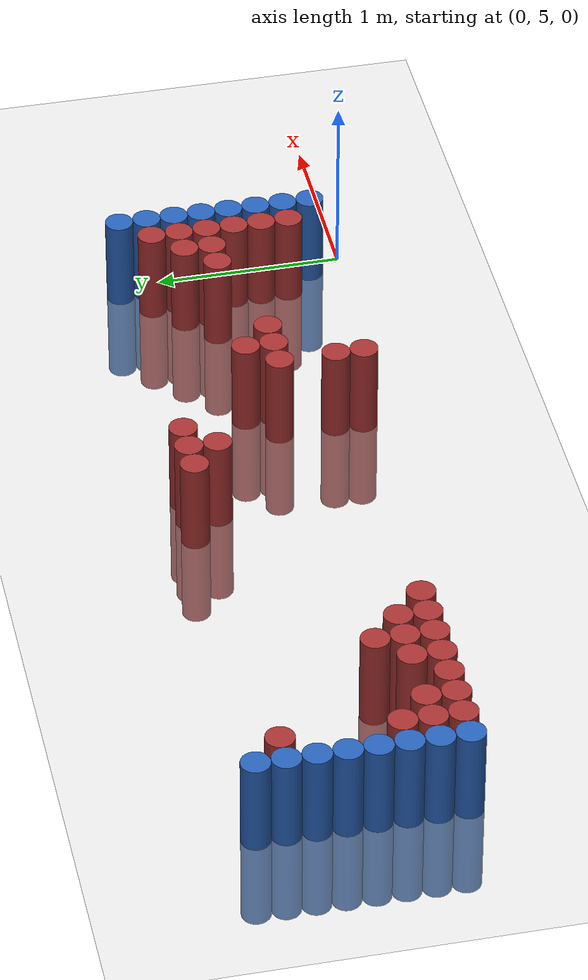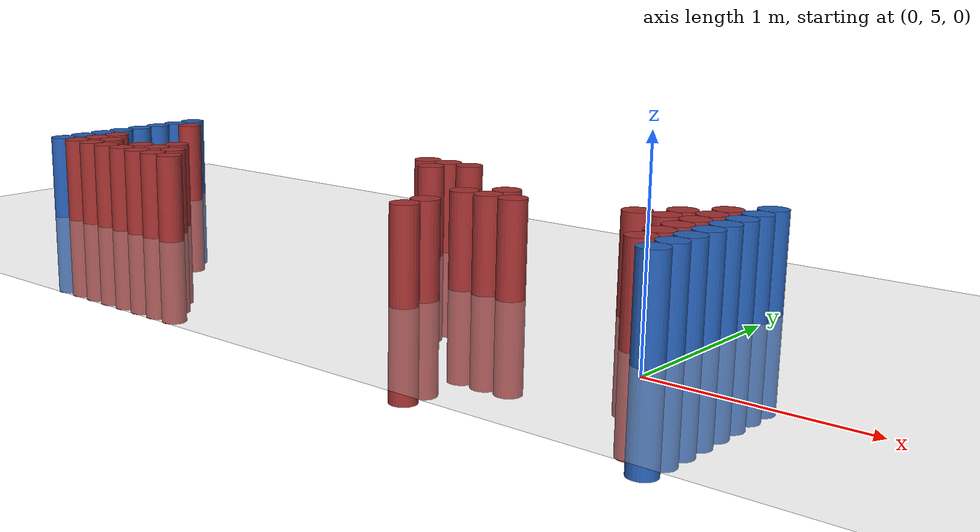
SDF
<sdf version="1.6">
 <world name="default">
  <model name="ground_plane">
   <static>1</static>
   <link name="link">
    <collision name="collision">
     <geometry><plane><normal>0 0 1</normal><size>100 100</size></plane></geometry>
     <surface><friction><ode><mu>100</mu><mu2>50</mu2></ode></friction></surface>
    </collision>
    <visual name="visual">
     <cast_shadows>0</cast_shadows>
     <geometry><plane><normal>0 0 1</normal><size>100 100</size></plane></geometry>
     <material>
      <script><uri>file://media/materials/scripts/gazebo.material</uri><name>Gazebo/Grey</name></script>
     </material>
    </visual>
   </link>
  </model>
  <model name="unit_cylinder_97">
   <static>1</static>
   <pose>-4.425000 5.325000 0.000000 0.000000 0.000000 0.000000</pose>
   <link name="link">
    <inertial>
     <mass>1</mass>
     <inertia><ixx>0.145833</ixx><ixy>0</ixy><ixz>0</ixz><iyy>0.145833</iyy><iyz>0</iyz><izz>0.125</izz></inertia>
    </inertial>
    <collision name="collision">
     <geometry><cylinder><radius>0.075000</radius><length>1</length></cylinder></geometry>
    </collision>
    <visual name="visual">
     <geometry><cylinder><radius>0.075000</radius><length>1</length></cylinder></geometry>
     <material>
      <ambient>0.152000 0.379000 0.720000 1</ambient>
      <diffuse>0.152000 0.379000 0.720000 1</diffuse>
     </material>
     <material>
      <script><name>Gazebo/Grey</name><uri>file://media/materials/scripts/gazebo.material</uri></script>
     </material>
    </visual>
   </link>
  </model>
  <model name="unit_cylinder_98">
   <static>1</static>
   <pose>-4.425000 5.475000 0.000000 0.000000 0.000000 0.000000</pose>
   <link name="link">
    <inertial>
     <mass>1</mass>
     <inertia><ixx>0.145833</ixx><ixy>0</ixy><ixz>0</ixz><iyy>0.145833</iyy><iyz>0</iyz><izz>0.125</izz></inertia>
    </inertial>
    <collision name="collision">
     <geometry><cylinder><radius>0.075000</radius><length>1</length></cylinder></geometry>
    </collision>
    <visual name="visual">
     <geometry><cylinder><radius>0.075000</radius><length>1</length></cylinder></geometry>
     <material>
      <ambient>0.152000 0.379000 0.720000 1</ambient>
      <diffuse>0.152000 0.379000 0.720000 1</diffuse>
     </material>
     <material>
      <script><name>Gazebo/Grey</name><uri>file://media/materials/scripts/gazebo.material</uri></script>
     </material>
    </visual>
   </link>
  </model>
  <model name="unit_cylinder_99">
   <static>1</static>
   <pose>-4.425000 5.625000 0.000000 0.000000 0.000000 0.000000</pose>
   <link name="link">
    <inertial>
     <mass>1</mass>
     <inertia><ixx>0.145833</ixx><ixy>0</ixy><ixz>0</ixz><iyy>0.145833</iyy><iyz>0</iyz><izz>0.125</izz></inertia>
    </inertial>
    <collision name="collision">
     <geometry><cylinder><radius>0.075000</radius><length>1</length></cylinder></geometry>
    </collision>
    <visual name="visual">
     <geometry><cylinder><radius>0.075000</radius><length>1</length></cylinder></geometry>
     <material>
      <ambient>0.152000 0.379000 0.720000 1</ambient>
      <diffuse>0.152000 0.379000 0.720000 1</diffuse>
     </material>
     <material>
      <script><name>Gazebo/Grey</name><uri>file://media/materials/scripts/gazebo.material</uri></script>
     </material>
    </visual>
   </link>
  </model>
  <model name="unit_cylinder_100">
   <static>1</static>
   <pose>-4.425000 5.775000 0.000000 0.000000 0.000000 0.000000</pose>
   <link name="link">
    <inertial>
     <mass>1</mass>
     <inertia><ixx>0.145833</ixx><ixy>0</ixy><ixz>0</ixz><iyy>0.145833</iyy><iyz>0</iyz><izz>0.125</izz></inertia>
    </inertial>
    <collision name="collision">
     <geometry><cylinder><radius>0.075000</radius><length>1</length></cylinder></geometry>
    </collision>
    <visual name="visual">
     <geometry><cylinder><radius>0.075000</radius><length>1</length></cylinder></geometry>
     <material>
      <ambient>0.152000 0.379000 0.720000 1</ambient>
      <diffuse>0.152000 0.379000 0.720000 1</diffuse>
     </material>
     <material>
      <script><name>Gazebo/Grey</name><uri>file://media/materials/scripts/gazebo.material</uri></script>
     </material>
    </visual>
   </link>
  </model>
  <model name="unit_cylinder_101">
   <static>1</static>
   <pose>-4.425000 5.925000 0.000000 0.000000 0.000000 0.000000</pose>
   <link name="link">
    <inertial>
     <mass>1</mass>
     <inertia><ixx>0.145833</ixx><ixy>0</ixy><ixz>0</ixz><iyy>0.145833</iyy><iyz>0</iyz><izz>0.125</izz></inertia>
    </inertial>
    <collision name="collision">
     <geometry><cylinder><radius>0.075000</radius><length>1</length></cylinder></geometry>
    </collision>
    <visual name="visual">
     <geometry><cylinder><radius>0.075000</radius><length>1</length></cylinder></geometry>
     <material>
      <ambient>0.152000 0.379000 0.720000 1</ambient>
      <diffuse>0.152000 0.379000 0.720000 1</diffuse>
     </material>
     <material>
      <script><name>Gazebo/Grey</name><uri>file://media/materials/scripts/gazebo.material</uri></script>
     </material>
    </visual>
   </link>
  </model>
  <model name="unit_cylinder_102">
   <static>1</static>
   <pose>-4.425000 6.075000 0.000000 0.000000 0.000000 0.000000</pose>
   <link name="link">
    <inertial>
     <mass>1</mass>
     <inertia><ixx>0.145833</ixx><ixy>0</ixy><ixz>0</ixz><iyy>0.145833</iyy><iyz>0</iyz><izz>0.125</izz></inertia>
    </inertial>
    <collision name="collision">
     <geometry><cylinder><radius>0.075000</radius><length>1</length></cylinder></geometry>
    </collision>
    <visual name="visual">
     <geometry><cylinder><radius>0.075000</radius><length>1</length></cylinder></geometry>
     <material>
      <ambient>0.152000 0.379000 0.720000 1</ambient>
      <diffuse>0.152000 0.379000 0.720000 1</diffuse>
     </material>
     <material>
      <script><name>Gazebo/Grey</name><uri>file://media/materials/scripts/gazebo.material</uri></script>
     </material>
    </visual>
   </link>
  </model>
  <model name="unit_cylinder_103">
   <static>1</static>
   <pose>-4.425000 6.225000 0.000000 0.000000 0.000000 0.000000</pose>
   <link name="link">
    <inertial>
     <mass>1</mass>
     <inertia><ixx>0.145833</ixx><ixy>0</ixy><ixz>0</ixz><iyy>0.145833</iyy><iyz>0</iyz><izz>0.125</izz></inertia>
    </inertial>
    <collision name="collision">
     <geometry><cylinder><radius>0.075000</radius><length>1</length></cylinder></geometry>
    </collision>
    <visual name="visual">
     <geometry><cylinder><radius>0.075000</radius><length>1</length></cylinder></geometry>
     <material>
      <ambient>0.152000 0.379000 0.720000 1</ambient>
      <diffuse>0.152000 0.379000 0.720000 1</diffuse>
     </material>
     <material>
      <script><name>Gazebo/Grey</name><uri>file://media/materials/scripts/gazebo.material</uri></script>
     </material>
    </visual>
   </link>
  </model>
  <model name="unit_cylinder_104">
   <static>1</static>
   <pose>-4.425000 6.375000 0.000000 0.000000 0.000000 0.000000</pose>
   <link name="link">
    <inertial>
     <mass>1</mass>
     <inertia><ixx>0.145833</ixx><ixy>0</ixy><ixz>0</ixz><iyy>0.145833</iyy><iyz>0</iyz><izz>0.125</izz></inertia>
    </inertial>
    <collision name="collision">
     <geometry><cylinder><radius>0.075000</radius><length>1</length></cylinder></geometry>
    </collision>
    <visual name="visual">
     <geometry><cylinder><radius>0.075000</radius><length>1</length></cylinder></geometry>
     <material>
      <ambient>0.152000 0.379000 0.720000 1</ambient>
      <diffuse>0.152000 0.379000 0.720000 1</diffuse>
     </material>
     <material>
      <script><name>Gazebo/Grey</name><uri>file://media/materials/scripts/gazebo.material</uri></script>
     </material>
    </visual>
   </link>
  </model>
  <model name="unit_cylinder_126">
   <static>1</static>
   <pose>-4.275000 5.325000 0.000000 0.000000 0.000000 0.000000</pose>
   <link name="link">
    <inertial>
     <mass>1</mass>
     <inertia><ixx>0.145833</ixx><ixy>0</ixy><ixz>0</ixz><iyy>0.145833</iyy><iyz>0</iyz><izz>0.125</izz></inertia>
    </inertial>
    <collision name="collision">
     <geometry><cylinder><radius>0.075000</radius><length>1</length></cylinder></geometry>
    </collision>
    <visual name="visual">
     <geometry><cylinder><radius>0.075000</radius><length>1</length></cylinder></geometry>
     <material>
      <ambient>0.648000 0.192000 0.192000 1</ambient>
      <diffuse>0.648000 0.192000 0.192000 1</diffuse>
     </material>
     <material>
      <script><name>Gazebo/Grey</name><uri>file://media/materials/scripts/gazebo.material</uri></script>
     </material>
    </visual>
   </link>
  </model>
  <model name="unit_cylinder_127">
   <static>1</static>
   <pose>-4.275000 5.475000 0.000000 0.000000 0.000000 0.000000</pose>
   <link name="link">
    <inertial>
     <mass>1</mass>
     <inertia><ixx>0.145833</ixx><ixy>0</ixy><ixz>0</ixz><iyy>0.145833</iyy><iyz>0</iyz><izz>0.125</izz></inertia>
    </inertial>
    <collision name="collision">
     <geometry><cylinder><radius>0.075000</radius><length>1</length></cylinder></geometry>
    </collision>
    <visual name="visual">
     <geometry><cylinder><radius>0.075000</radius><length>1</length></cylinder></geometry>
     <material>
      <ambient>0.648000 0.192000 0.192000 1</ambient>
      <diffuse>0.648000 0.192000 0.192000 1</diffuse>
     </material>
     <material>
      <script><name>Gazebo/Grey</name><uri>file://media/materials/scripts/gazebo.material</uri></script>
     </material>
    </visual>
   </link>
  </model>
  <model name="unit_cylinder_128">
   <static>1</static>
   <pose>-4.275000 5.625000 0.000000 0.000000 0.000000 0.000000</pose>
   <link name="link">
    <inertial>
     <mass>1</mass>
     <inertia><ixx>0.145833</ixx><ixy>0</ixy><ixz>0</ixz><iyy>0.145833</iyy><iyz>0</iyz><izz>0.125</izz></inertia>
    </inertial>
    <collision name="collision">
     <geometry><cylinder><radius>0.075000</radius><length>1</length></cylinder></geometry>
    </collision>
    <visual name="visual">
     <geometry><cylinder><radius>0.075000</radius><length>1</length></cylinder></geometry>
     <material>
      <ambient>0.648000 0.192000 0.192000 1</ambient>
      <diffuse>0.648000 0.192000 0.192000 1</diffuse>
     </material>
     <material>
      <script><name>Gazebo/Grey</name><uri>file://media/materials/scripts/gazebo.material</uri></script>
     </material>
    </visual>
   </link>
  </model>
  <model name="unit_cylinder_129">
   <static>1</static>
   <pose>-4.275000 6.225000 0.000000 0.000000 0.000000 0.000000</pose>
   <link name="link">
    <inertial>
     <mass>1</mass>
     <inertia><ixx>0.145833</ixx><ixy>0</ixy><ixz>0</ixz><iyy>0.145833</iyy><iyz>0</iyz><izz>0.125</izz></inertia>
    </inertial>
    <collision name="collision">
     <geometry><cylinder><radius>0.075000</radius><length>1</length></cylinder></geometry>
    </collision>
    <visual name="visual">
     <geometry><cylinder><radius>0.075000</radius><length>1</length></cylinder></geometry>
     <material>
      <ambient>0.648000 0.192000 0.192000 1</ambient>
      <diffuse>0.648000 0.192000 0.192000 1</diffuse>
     </material>
     <material>
      <script><name>Gazebo/Grey</name><uri>file://media/materials/scripts/gazebo.material</uri></script>
     </material>
    </visual>
   </link>
  </model>
  <model name="unit_cylinder_139">
   <static>1</static>
   <pose>-4.125000 5.325000 0.000000 0.000000 0.000000 0.000000</pose>
   <link name="link">
    <inertial>
     <mass>1</mass>
     <inertia><ixx>0.145833</ixx><ixy>0</ixy><ixz>0</ixz><iyy>0.145833</iyy><iyz>0</iyz><izz>0.125</izz></inertia>
    </inertial>
    <collision name="collision">
     <geometry><cylinder><radius>0.075000</radius><length>1</length></cylinder></geometry>
    </collision>
    <visual name="visual">
     <geometry><cylinder><radius>0.075000</radius><length>1</length></cylinder></geometry>
     <material>
      <ambient>0.648000 0.192000 0.192000 1</ambient>
      <diffuse>0.648000 0.192000 0.192000 1</diffuse>
     </material>
     <material>
      <script><name>Gazebo/Grey</name><uri>file://media/materials/scripts/gazebo.material</uri></script>
     </material>
    </visual>
   </link>
  </model>
  <model name="unit_cylinder_140">
   <static>1</static>
   <pose>-4.125000 5.475000 0.000000 0.000000 0.000000 0.000000</pose>
   <link name="link">
    <inertial>
     <mass>1</mass>
     <inertia><ixx>0.145833</ixx><ixy>0</ixy><ixz>0</ixz><iyy>0.145833</iyy><iyz>0</iyz><izz>0.125</izz></inertia>
    </inertial>
    <collision name="collision">
     <geometry><cylinder><radius>0.075000</radius><length>1</length></cylinder></geometry>
    </collision>
    <visual name="visual">
     <geometry><cylinder><radius>0.075000</radius><length>1</length></cylinder></geometry>
     <material>
      <ambient>0.648000 0.192000 0.192000 1</ambient>
      <diffuse>0.648000 0.192000 0.192000 1</diffuse>
     </material>
     <material>
      <script><name>Gazebo/Grey</name><uri>file://media/materials/scripts/gazebo.material</uri></script>
     </material>
    </visual>
   </link>
  </model>
  <model name="unit_cylinder_146">
   <static>1</static>
   <pose>-3.975000 5.325000 0.000000 0.000000 0.000000 0.000000</pose>
   <link name="link">
    <inertial>
     <mass>1</mass>
     <inertia><ixx>0.145833</ixx><ixy>0</ixy><ixz>0</ixz><iyy>0.145833</iyy><iyz>0</iyz><izz>0.125</izz></inertia>
    </inertial>
    <collision name="collision">
     <geometry><cylinder><radius>0.075000</radius><length>1</length></cylinder></geometry>
    </collision>
    <visual name="visual">
     <geometry><cylinder><radius>0.075000</radius><length>1</length></cylinder></geometry>
     <material>
      <ambient>0.648000 0.192000 0.192000 1</ambient>
      <diffuse>0.648000 0.192000 0.192000 1</diffuse>
     </material>
     <material>
      <script><name>Gazebo/Grey</name><uri>file://media/materials/scripts/gazebo.material</uri></script>
     </material>
    </visual>
   </link>
  </model>
  <model name="unit_cylinder_155">
   <static>1</static>
   <pose>-3.825000 5.325000 0.000000 0.000000 0.000000 0.000000</pose>
   <link name="link">
    <inertial>
     <mass>1</mass>
     <inertia><ixx>0.145833</ixx><ixy>0</ixy><ixz>0</ixz><iyy>0.145833</iyy><iyz>0</iyz><izz>0.125</izz></inertia>
    </inertial>
    <collision name="collision">
     <geometry><cylinder><radius>0.075000</radius><length>1</length></cylinder></geometry>
    </collision>
    <visual name="visual">
     <geometry><cylinder><radius>0.075000</radius><length>1</length></cylinder></geometry>
     <material>
      <ambient>0.648000 0.192000 0.192000 1</ambient>
      <diffuse>0.648000 0.192000 0.192000 1</diffuse>
     </material>
     <material>
      <script><name>Gazebo/Grey</name><uri>file://media/materials/scripts/gazebo.material</uri></script>
     </material>
    </visual>
   </link>
  </model>
  <model name="unit_cylinder_156">
   <static>1</static>
   <pose>-3.825000 5.475000 0.000000 0.000000 0.000000 0.000000</pose>
   <link name="link">
    <inertial>
     <mass>1</mass>
     <inertia><ixx>0.145833</ixx><ixy>0</ixy><ixz>0</ixz><iyy>0.145833</iyy><iyz>0</iyz><izz>0.125</izz></inertia>
    </inertial>
    <collision name="collision">
     <geometry><cylinder><radius>0.075000</radius><length>1</length></cylinder></geometry>
    </collision>
    <visual name="visual">
     <geometry><cylinder><radius>0.075000</radius><length>1</length></cylinder></geometry>
     <material>
      <ambient>0.648000 0.192000 0.192000 1</ambient>
      <diffuse>0.648000 0.192000 0.192000 1</diffuse>
     </material>
     <material>
      <script><name>Gazebo/Grey</name><uri>file://media/materials/scripts/gazebo.material</uri></script>
     </material>
    </visual>
   </link>
  </model>
  <model name="unit_cylinder_168">
   <static>1</static>
   <pose>-3.675000 5.325000 0.000000 0.000000 0.000000 0.000000</pose>
   <link name="link">
    <inertial>
     <mass>1</mass>
     <inertia><ixx>0.145833</ixx><ixy>0</ixy><ixz>0</ixz><iyy>0.145833</iyy><iyz>0</iyz><izz>0.125</izz></inertia>
    </inertial>
    <collision name="collision">
     <geometry><cylinder><radius>0.075000</radius><length>1</length></cylinder></geometry>
    </collision>
    <visual name="visual">
     <geometry><cylinder><radius>0.075000</radius><length>1</length></cylinder></geometry>
     <material>
      <ambient>0.648000 0.192000 0.192000 1</ambient>
      <diffuse>0.648000 0.192000 0.192000 1</diffuse>
     </material>
     <material>
      <script><name>Gazebo/Grey</name><uri>file://media/materials/scripts/gazebo.material</uri></script>
     </material>
    </visual>
   </link>
  </model>
  <model name="unit_cylinder_169">
   <static>1</static>
   <pose>-3.675000 5.475000 0.000000 0.000000 0.000000 0.000000</pose>
   <link name="link">
    <inertial>
     <mass>1</mass>
     <inertia><ixx>0.145833</ixx><ixy>0</ixy><ixz>0</ixz><iyy>0.145833</iyy><iyz>0</iyz><izz>0.125</izz></inertia>
    </inertial>
    <collision name="collision">
     <geometry><cylinder><radius>0.075000</radius><length>1</length></cylinder></geometry>
    </collision>
    <visual name="visual">
     <geometry><cylinder><radius>0.075000</radius><length>1</length></cylinder></geometry>
     <material>
      <ambient>0.648000 0.192000 0.192000 1</ambient>
      <diffuse>0.648000 0.192000 0.192000 1</diffuse>
     </material>
     <material>
      <script><name>Gazebo/Grey</name><uri>file://media/materials/scripts/gazebo.material</uri></script>
     </material>
    </visual>
   </link>
  </model>
  <model name="unit_cylinder_170">
   <static>1</static>
   <pose>-3.675000 5.625000 0.000000 0.000000 0.000000 0.000000</pose>
   <link name="link">
    <inertial>
     <mass>1</mass>
     <inertia><ixx>0.145833</ixx><ixy>0</ixy><ixz>0</ixz><iyy>0.145833</iyy><iyz>0</iyz><izz>0.125</izz></inertia>
    </inertial>
    <collision name="collision">
     <geometry><cylinder><radius>0.075000</radius><length>1</length></cylinder></geometry>
    </collision>
    <visual name="visual">
     <geometry><cylinder><radius>0.075000</radius><length>1</length></cylinder></geometry>
     <material>
      <ambient>0.648000 0.192000 0.192000 1</ambient>
      <diffuse>0.648000 0.192000 0.192000 1</diffuse>
     </material>
     <material>
      <script><name>Gazebo/Grey</name><uri>file://media/materials/scripts/gazebo.material</uri></script>
     </material>
    </visual>
   </link>
  </model>
  <model name="unit_cylinder_175">
   <static>1</static>
   <pose>-3.525000 5.325000 0.000000 0.000000 0.000000 0.000000</pose>
   <link name="link">
    <inertial>
     <mass>1</mass>
     <inertia><ixx>0.145833</ixx><ixy>0</ixy><ixz>0</ixz><iyy>0.145833</iyy><iyz>0</iyz><izz>0.125</izz></inertia>
    </inertial>
    <collision name="collision">
     <geometry><cylinder><radius>0.075000</radius><length>1</length></cylinder></geometry>
    </collision>
    <visual name="visual">
     <geometry><cylinder><radius>0.075000</radius><length>1</length></cylinder></geometry>
     <material>
      <ambient>0.648000 0.192000 0.192000 1</ambient>
      <diffuse>0.648000 0.192000 0.192000 1</diffuse>
     </material>
     <material>
      <script><name>Gazebo/Grey</name><uri>file://media/materials/scripts/gazebo.material</uri></script>
     </material>
    </visual>
   </link>
  </model>
  <model name="unit_cylinder_176">
   <static>1</static>
   <pose>-3.525000 5.475000 0.000000 0.000000 0.000000 0.000000</pose>
   <link name="link">
    <inertial>
     <mass>1</mass>
     <inertia><ixx>0.145833</ixx><ixy>0</ixy><ixz>0</ixz><iyy>0.145833</iyy><iyz>0</iyz><izz>0.125</izz></inertia>
    </inertial>
    <collision name="collision">
     <geometry><cylinder><radius>0.075000</radius><length>1</length></cylinder></geometry>
    </collision>
    <visual name="visual">
     <geometry><cylinder><radius>0.075000</radius><length>1</length></cylinder></geometry>
     <material>
      <ambient>0.648000 0.192000 0.192000 1</ambient>
      <diffuse>0.648000 0.192000 0.192000 1</diffuse>
     </material>
     <material>
      <script><name>Gazebo/Grey</name><uri>file://media/materials/scripts/gazebo.material</uri></script>
     </material>
    </visual>
   </link>
  </model>
  <model name="unit_cylinder_179">
   <static>1</static>
   <pose>-3.375000 5.325000 0.000000 0.000000 0.000000 0.000000</pose>
   <link name="link">
    <inertial>
     <mass>1</mass>
     <inertia><ixx>0.145833</ixx><ixy>0</ixy><ixz>0</ixz><iyy>0.145833</iyy><iyz>0</iyz><izz>0.125</izz></inertia>
    </inertial>
    <collision name="collision">
     <geometry><cylinder><radius>0.075000</radius><length>1</length></cylinder></geometry>
    </collision>
    <visual name="visual">
     <geometry><cylinder><radius>0.075000</radius><length>1</length></cylinder></geometry>
     <material>
      <ambient>0.648000 0.192000 0.192000 1</ambient>
      <diffuse>0.648000 0.192000 0.192000 1</diffuse>
     </material>
     <material>
      <script><name>Gazebo/Grey</name><uri>file://media/materials/scripts/gazebo.material</uri></script>
     </material>
    </visual>
   </link>
  </model>
  <model name="unit_cylinder_195">
   <static>1</static>
   <pose>-2.175000 6.225000 0.000000 0.000000 0.000000 0.000000</pose>
   <link name="link">
    <inertial>
     <mass>1</mass>
     <inertia><ixx>0.145833</ixx><ixy>0</ixy><ixz>0</ixz><iyy>0.145833</iyy><iyz>0</iyz><izz>0.125</izz></inertia>
    </inertial>
    <collision name="collision">
     <geometry><cylinder><radius>0.075000</radius><length>1</length></cylinder></geometry>
    </collision>
    <visual name="visual">
     <geometry><cylinder><radius>0.075000</radius><length>1</length></cylinder></geometry>
     <material>
      <ambient>0.648000 0.192000 0.192000 1</ambient>
      <diffuse>0.648000 0.192000 0.192000 1</diffuse>
     </material>
     <material>
      <script><name>Gazebo/Grey</name><uri>file://media/materials/scripts/gazebo.material</uri></script>
     </material>
    </visual>
   </link>
  </model>
  <model name="unit_cylinder_200">
   <static>1</static>
   <pose>-2.025000 6.075000 0.000000 0.000000 0.000000 0.000000</pose>
   <link name="link">
    <inertial>
     <mass>1</mass>
     <inertia><ixx>0.145833</ixx><ixy>0</ixy><ixz>0</ixz><iyy>0.145833</iyy><iyz>0</iyz><izz>0.125</izz></inertia>
    </inertial>
    <collision name="collision">
     <geometry><cylinder><radius>0.075000</radius><length>1</length></cylinder></geometry>
    </collision>
    <visual name="visual">
     <geometry><cylinder><radius>0.075000</radius><length>1</length></cylinder></geometry>
     <material>
      <ambient>0.648000 0.192000 0.192000 1</ambient>
      <diffuse>0.648000 0.192000 0.192000 1</diffuse>
     </material>
     <material>
      <script><name>Gazebo/Grey</name><uri>file://media/materials/scripts/gazebo.material</uri></script>
     </material>
    </visual>
   </link>
  </model>
  <model name="unit_cylinder_201">
   <static>1</static>
   <pose>-2.025000 6.225000 0.000000 0.000000 0.000000 0.000000</pose>
   <link name="link">
    <inertial>
     <mass>1</mass>
     <inertia><ixx>0.145833</ixx><ixy>0</ixy><ixz>0</ixz><iyy>0.145833</iyy><iyz>0</iyz><izz>0.125</izz></inertia>
    </inertial>
    <collision name="collision">
     <geometry><cylinder><radius>0.075000</radius><length>1</length></cylinder></geometry>
    </collision>
    <visual name="visual">
     <geometry><cylinder><radius>0.075000</radius><length>1</length></cylinder></geometry>
     <material>
      <ambient>0.648000 0.192000 0.192000 1</ambient>
      <diffuse>0.648000 0.192000 0.192000 1</diffuse>
     </material>
     <material>
      <script><name>Gazebo/Grey</name><uri>file://media/materials/scripts/gazebo.material</uri></script>
     </material>
    </visual>
   </link>
  </model>
  <model name="unit_cylinder_209">
   <static>1</static>
   <pose>-1.875000 6.225000 0.000000 0.000000 0.000000 0.000000</pose>
   <link name="link">
    <inertial>
     <mass>1</mass>
     <inertia><ixx>0.145833</ixx><ixy>0</ixy><ixz>0</ixz><iyy>0.145833</iyy><iyz>0</iyz><izz>0.125</izz></inertia>
    </inertial>
    <collision name="collision">
     <geometry><cylinder><radius>0.075000</radius><length>1</length></cylinder></geometry>
    </collision>
    <visual name="visual">
     <geometry><cylinder><radius>0.075000</radius><length>1</length></cylinder></geometry>
     <material>
      <ambient>0.648000 0.192000 0.192000 1</ambient>
      <diffuse>0.648000 0.192000 0.192000 1</diffuse>
     </material>
     <material>
      <script><name>Gazebo/Grey</name><uri>file://media/materials/scripts/gazebo.material</uri></script>
     </material>
    </visual>
   </link>
  </model>
  <model name="unit_cylinder_223">
   <static>1</static>
   <pose>-1.425000 5.175000 0.000000 0.000000 0.000000 0.000000</pose>
   <link name="link">
    <inertial>
     <mass>1</mass>
     <inertia><ixx>0.145833</ixx><ixy>0</ixy><ixz>0</ixz><iyy>0.145833</iyy><iyz>0</iyz><izz>0.125</izz></inertia>
    </inertial>
    <collision name="collision">
     <geometry><cylinder><radius>0.075000</radius><length>1</length></cylinder></geometry>
    </collision>
    <visual name="visual">
     <geometry><cylinder><radius>0.075000</radius><length>1</length></cylinder></geometry>
     <material>
      <ambient>0.648000 0.192000 0.192000 1</ambient>
      <diffuse>0.648000 0.192000 0.192000 1</diffuse>
     </material>
     <material>
      <script><name>Gazebo/Grey</name><uri>file://media/materials/scripts/gazebo.material</uri></script>
     </material>
    </visual>
   </link>
  </model>
  <model name="unit_cylinder_224">
   <static>1</static>
   <pose>-1.425000 5.325000 0.000000 0.000000 0.000000 0.000000</pose>
   <link name="link">
    <inertial>
     <mass>1</mass>
     <inertia><ixx>0.145833</ixx><ixy>0</ixy><ixz>0</ixz><iyy>0.145833</iyy><iyz>0</iyz><izz>0.125</izz></inertia>
    </inertial>
    <collision name="collision">
     <geometry><cylinder><radius>0.075000</radius><length>1</length></cylinder></geometry>
    </collision>
    <visual name="visual">
     <geometry><cylinder><radius>0.075000</radius><length>1</length></cylinder></geometry>
     <material>
      <ambient>0.648000 0.192000 0.192000 1</ambient>
      <diffuse>0.648000 0.192000 0.192000 1</diffuse>
     </material>
     <material>
      <script><name>Gazebo/Grey</name><uri>file://media/materials/scripts/gazebo.material</uri></script>
     </material>
    </visual>
   </link>
  </model>
  <model name="unit_cylinder_225">
   <static>1</static>
   <pose>-1.425000 5.625000 0.000000 0.000000 0.000000 0.000000</pose>
   <link name="link">
    <inertial>
     <mass>1</mass>
     <inertia><ixx>0.145833</ixx><ixy>0</ixy><ixz>0</ixz><iyy>0.145833</iyy><iyz>0</iyz><izz>0.125</izz></inertia>
    </inertial>
    <collision name="collision">
     <geometry><cylinder><radius>0.075000</radius><length>1</length></cylinder></geometry>
    </collision>
    <visual name="visual">
     <geometry><cylinder><radius>0.075000</radius><length>1</length></cylinder></geometry>
     <material>
      <ambient>0.648000 0.192000 0.192000 1</ambient>
      <diffuse>0.648000 0.192000 0.192000 1</diffuse>
     </material>
     <material>
      <script><name>Gazebo/Grey</name><uri>file://media/materials/scripts/gazebo.material</uri></script>
     </material>
    </visual>
   </link>
  </model>
  <model name="unit_cylinder_229">
   <static>1</static>
   <pose>-1.275000 5.625000 0.000000 0.000000 0.000000 0.000000</pose>
   <link name="link">
    <inertial>
     <mass>1</mass>
     <inertia><ixx>0.145833</ixx><ixy>0</ixy><ixz>0</ixz><iyy>0.145833</iyy><iyz>0</iyz><izz>0.125</izz></inertia>
    </inertial>
    <collision name="collision">
     <geometry><cylinder><radius>0.075000</radius><length>1</length></cylinder></geometry>
    </collision>
    <visual name="visual">
     <geometry><cylinder><radius>0.075000</radius><length>1</length></cylinder></geometry>
     <material>
      <ambient>0.648000 0.192000 0.192000 1</ambient>
      <diffuse>0.648000 0.192000 0.192000 1</diffuse>
     </material>
     <material>
      <script><name>Gazebo/Grey</name><uri>file://media/materials/scripts/gazebo.material</uri></script>
     </material>
    </visual>
   </link>
  </model>
  <model name="unit_cylinder_230">
   <static>1</static>
   <pose>-1.275000 5.775000 0.000000 0.000000 0.000000 0.000000</pose>
   <link name="link">
    <inertial>
     <mass>1</mass>
     <inertia><ixx>0.145833</ixx><ixy>0</ixy><ixz>0</ixz><iyy>0.145833</iyy><iyz>0</iyz><izz>0.125</izz></inertia>
    </inertial>
    <collision name="collision">
     <geometry><cylinder><radius>0.075000</radius><length>1</length></cylinder></geometry>
    </collision>
    <visual name="visual">
     <geometry><cylinder><radius>0.075000</radius><length>1</length></cylinder></geometry>
     <material>
      <ambient>0.648000 0.192000 0.192000 1</ambient>
      <diffuse>0.648000 0.192000 0.192000 1</diffuse>
     </material>
     <material>
      <script><name>Gazebo/Grey</name><uri>file://media/materials/scripts/gazebo.material</uri></script>
     </material>
    </visual>
   </link>
  </model>
  <model name="unit_cylinder_236">
   <static>1</static>
   <pose>-1.125000 5.625000 0.000000 0.000000 0.000000 0.000000</pose>
   <link name="link">
    <inertial>
     <mass>1</mass>
     <inertia><ixx>0.145833</ixx><ixy>0</ixy><ixz>0</ixz><iyy>0.145833</iyy><iyz>0</iyz><izz>0.125</izz></inertia>
    </inertial>
    <collision name="collision">
     <geometry><cylinder><radius>0.075000</radius><length>1</length></cylinder></geometry>
    </collision>
    <visual name="visual">
     <geometry><cylinder><radius>0.075000</radius><length>1</length></cylinder></geometry>
     <material>
      <ambient>0.648000 0.192000 0.192000 1</ambient>
      <diffuse>0.648000 0.192000 0.192000 1</diffuse>
     </material>
     <material>
      <script><name>Gazebo/Grey</name><uri>file://media/materials/scripts/gazebo.material</uri></script>
     </material>
    </visual>
   </link>
  </model>
  <model name="unit_cylinder_246">
   <static>1</static>
   <pose>-0.525000 5.775000 0.000000 0.000000 0.000000 0.000000</pose>
   <link name="link">
    <inertial>
     <mass>1</mass>
     <inertia><ixx>0.145833</ixx><ixy>0</ixy><ixz>0</ixz><iyy>0.145833</iyy><iyz>0</iyz><izz>0.125</izz></inertia>
    </inertial>
    <collision name="collision">
     <geometry><cylinder><radius>0.075000</radius><length>1</length></cylinder></geometry>
    </collision>
    <visual name="visual">
     <geometry><cylinder><radius>0.075000</radius><length>1</length></cylinder></geometry>
     <material>
      <ambient>0.648000 0.192000 0.192000 1</ambient>
      <diffuse>0.648000 0.192000 0.192000 1</diffuse>
     </material>
     <material>
      <script><name>Gazebo/Grey</name><uri>file://media/materials/scripts/gazebo.material</uri></script>
     </material>
    </visual>
   </link>
  </model>
  <model name="unit_cylinder_248">
   <static>1</static>
   <pose>-0.375000 5.775000 0.000000 0.000000 0.000000 0.000000</pose>
   <link name="link">
    <inertial>
     <mass>1</mass>
     <inertia><ixx>0.145833</ixx><ixy>0</ixy><ixz>0</ixz><iyy>0.145833</iyy><iyz>0</iyz><izz>0.125</izz></inertia>
    </inertial>
    <collision name="collision">
     <geometry><cylinder><radius>0.075000</radius><length>1</length></cylinder></geometry>
    </collision>
    <visual name="visual">
     <geometry><cylinder><radius>0.075000</radius><length>1</length></cylinder></geometry>
     <material>
      <ambient>0.648000 0.192000 0.192000 1</ambient>
      <diffuse>0.648000 0.192000 0.192000 1</diffuse>
     </material>
     <material>
      <script><name>Gazebo/Grey</name><uri>file://media/materials/scripts/gazebo.material</uri></script>
     </material>
    </visual>
   </link>
  </model>
  <model name="unit_cylinder_249">
   <static>1</static>
   <pose>-0.375000 5.925000 0.000000 0.000000 0.000000 0.000000</pose>
   <link name="link">
    <inertial>
     <mass>1</mass>
     <inertia><ixx>0.145833</ixx><ixy>0</ixy><ixz>0</ixz><iyy>0.145833</iyy><iyz>0</iyz><izz>0.125</izz></inertia>
    </inertial>
    <collision name="collision">
     <geometry><cylinder><radius>0.075000</radius><length>1</length></cylinder></geometry>
    </collision>
    <visual name="visual">
     <geometry><cylinder><radius>0.075000</radius><length>1</length></cylinder></geometry>
     <material>
      <ambient>0.648000 0.192000 0.192000 1</ambient>
      <diffuse>0.648000 0.192000 0.192000 1</diffuse>
     </material>
     <material>
      <script><name>Gazebo/Grey</name><uri>file://media/materials/scripts/gazebo.material</uri></script>
     </material>
    </visual>
   </link>
  </model>
  <model name="unit_cylinder_252">
   <static>1</static>
   <pose>-0.225000 5.325000 0.000000 0.000000 0.000000 0.000000</pose>
   <link name="link">
    <inertial>
     <mass>1</mass>
     <inertia><ixx>0.145833</ixx><ixy>0</ixy><ixz>0</ixz><iyy>0.145833</iyy><iyz>0</iyz><izz>0.125</izz></inertia>
    </inertial>
    <collision name="collision">
     <geometry><cylinder><radius>0.075000</radius><length>1</length></cylinder></geometry>
    </collision>
    <visual name="visual">
     <geometry><cylinder><radius>0.075000</radius><length>1</length></cylinder></geometry>
     <material>
      <ambient>0.648000 0.192000 0.192000 1</ambient>
      <diffuse>0.648000 0.192000 0.192000 1</diffuse>
     </material>
     <material>
      <script><name>Gazebo/Grey</name><uri>file://media/materials/scripts/gazebo.material</uri></script>
     </material>
    </visual>
   </link>
  </model>
  <model name="unit_cylinder_253">
   <static>1</static>
   <pose>-0.225000 5.475000 0.000000 0.000000 0.000000 0.000000</pose>
   <link name="link">
    <inertial>
     <mass>1</mass>
     <inertia><ixx>0.145833</ixx><ixy>0</ixy><ixz>0</ixz><iyy>0.145833</iyy><iyz>0</iyz><izz>0.125</izz></inertia>
    </inertial>
    <collision name="collision">
     <geometry><cylinder><radius>0.075000</radius><length>1</length></cylinder></geometry>
    </collision>
    <visual name="visual">
     <geometry><cylinder><radius>0.075000</radius><length>1</length></cylinder></geometry>
     <material>
      <ambient>0.648000 0.192000 0.192000 1</ambient>
      <diffuse>0.648000 0.192000 0.192000 1</diffuse>
     </material>
     <material>
      <script><name>Gazebo/Grey</name><uri>file://media/materials/scripts/gazebo.material</uri></script>
     </material>
    </visual>
   </link>
  </model>
  <model name="unit_cylinder_254">
   <static>1</static>
   <pose>-0.225000 5.625000 0.000000 0.000000 0.000000 0.000000</pose>
   <link name="link">
    <inertial>
     <mass>1</mass>
     <inertia><ixx>0.145833</ixx><ixy>0</ixy><ixz>0</ixz><iyy>0.145833</iyy><iyz>0</iyz><izz>0.125</izz></inertia>
    </inertial>
    <collision name="collision">
     <geometry><cylinder><radius>0.075000</radius><length>1</length></cylinder></geometry>
    </collision>
    <visual name="visual">
     <geometry><cylinder><radius>0.075000</radius><length>1</length></cylinder></geometry>
     <material>
      <ambient>0.648000 0.192000 0.192000 1</ambient>
      <diffuse>0.648000 0.192000 0.192000 1</diffuse>
     </material>
     <material>
      <script><name>Gazebo/Grey</name><uri>file://media/materials/scripts/gazebo.material</uri></script>
     </material>
    </visual>
   </link>
  </model>
  <model name="unit_cylinder_255">
   <static>1</static>
   <pose>-0.225000 5.775000 0.000000 0.000000 0.000000 0.000000</pose>
   <link name="link">
    <inertial>
     <mass>1</mass>
     <inertia><ixx>0.145833</ixx><ixy>0</ixy><ixz>0</ixz><iyy>0.145833</iyy><iyz>0</iyz><izz>0.125</izz></inertia>
    </inertial>
    <collision name="collision">
     <geometry><cylinder><radius>0.075000</radius><length>1</length></cylinder></geometry>
    </collision>
    <visual name="visual">
     <geometry><cylinder><radius>0.075000</radius><length>1</length></cylinder></geometry>
     <material>
      <ambient>0.648000 0.192000 0.192000 1</ambient>
      <diffuse>0.648000 0.192000 0.192000 1</diffuse>
     </material>
     <material>
      <script><name>Gazebo/Grey</name><uri>file://media/materials/scripts/gazebo.material</uri></script>
     </material>
    </visual>
   </link>
  </model>
  <model name="unit_cylinder_256">
   <static>1</static>
   <pose>-0.225000 5.925000 0.000000 0.000000 0.000000 0.000000</pose>
   <link name="link">
    <inertial>
     <mass>1</mass>
     <inertia><ixx>0.145833</ixx><ixy>0</ixy><ixz>0</ixz><iyy>0.145833</iyy><iyz>0</iyz><izz>0.125</izz></inertia>
    </inertial>
    <collision name="collision">
     <geometry><cylinder><radius>0.075000</radius><length>1</length></cylinder></geometry>
    </collision>
    <visual name="visual">
     <geometry><cylinder><radius>0.075000</radius><length>1</length></cylinder></geometry>
     <material>
      <ambient>0.648000 0.192000 0.192000 1</ambient>
      <diffuse>0.648000 0.192000 0.192000 1</diffuse>
     </material>
     <material>
      <script><name>Gazebo/Grey</name><uri>file://media/materials/scripts/gazebo.material</uri></script>
     </material>
    </visual>
   </link>
  </model>
  <model name="unit_cylinder_257">
   <static>1</static>
   <pose>-0.225000 6.075000 0.000000 0.000000 0.000000 0.000000</pose>
   <link name="link">
    <inertial>
     <mass>1</mass>
     <inertia><ixx>0.145833</ixx><ixy>0</ixy><ixz>0</ixz><iyy>0.145833</iyy><iyz>0</iyz><izz>0.125</izz></inertia>
    </inertial>
    <collision name="collision">
     <geometry><cylinder><radius>0.075000</radius><length>1</length></cylinder></geometry>
    </collision>
    <visual name="visual">
     <geometry><cylinder><radius>0.075000</radius><length>1</length></cylinder></geometry>
     <material>
      <ambient>0.648000 0.192000 0.192000 1</ambient>
      <diffuse>0.648000 0.192000 0.192000 1</diffuse>
     </material>
     <material>
      <script><name>Gazebo/Grey</name><uri>file://media/materials/scripts/gazebo.material</uri></script>
     </material>
    </visual>
   </link>
  </model>
  <model name="unit_cylinder_272">
   <static>1</static>
   <pose>-0.075000 5.175000 0.000000 0.000000 0.000000 0.000000</pose>
   <link name="link">
    <inertial>
     <mass>1</mass>
     <inertia><ixx>0.145833</ixx><ixy>0</ixy><ixz>0</ixz><iyy>0.145833</iyy><iyz>0</iyz><izz>0.125</izz></inertia>
    </inertial>
    <collision name="collision">
     <geometry><cylinder><radius>0.075000</radius><length>1</length></cylinder></geometry>
    </collision>
    <visual name="visual">
     <geometry><cylinder><radius>0.075000</radius><length>1</length></cylinder></geometry>
     <material>
      <ambient>0.152000 0.379000 0.720000 1</ambient>
      <diffuse>0.152000 0.379000 0.720000 1</diffuse>
     </material>
     <material>
      <script><name>Gazebo/Grey</name><uri>file://media/materials/scripts/gazebo.material</uri></script>
     </material>
    </visual>
   </link>
  </model>
  <model name="unit_cylinder_273">
   <static>1</static>
   <pose>-0.075000 5.325000 0.000000 0.000000 0.000000 0.000000</pose>
   <link name="link">
    <inertial>
     <mass>1</mass>
     <inertia><ixx>0.145833</ixx><ixy>0</ixy><ixz>0</ixz><iyy>0.145833</iyy><iyz>0</iyz><izz>0.125</izz></inertia>
    </inertial>
    <collision name="collision">
     <geometry><cylinder><radius>0.075000</radius><length>1</length></cylinder></geometry>
    </collision>
    <visual name="visual">
     <geometry><cylinder><radius>0.075000</radius><length>1</length></cylinder></geometry>
     <material>
      <ambient>0.152000 0.379000 0.720000 1</ambient>
      <diffuse>0.152000 0.379000 0.720000 1</diffuse>
     </material>
     <material>
      <script><name>Gazebo/Grey</name><uri>file://media/materials/scripts/gazebo.material</uri></script>
     </material>
    </visual>
   </link>
  </model>
  <model name="unit_cylinder_274">
   <static>1</static>
   <pose>-0.075000 5.475000 0.000000 0.000000 0.000000 0.000000</pose>
   <link name="link">
    <inertial>
     <mass>1</mass>
     <inertia><ixx>0.145833</ixx><ixy>0</ixy><ixz>0</ixz><iyy>0.145833</iyy><iyz>0</iyz><izz>0.125</izz></inertia>
    </inertial>
    <collision name="collision">
     <geometry><cylinder><radius>0.075000</radius><length>1</length></cylinder></geometry>
    </collision>
    <visual name="visual">
     <geometry><cylinder><radius>0.075000</radius><length>1</length></cylinder></geometry>
     <material>
      <ambient>0.152000 0.379000 0.720000 1</ambient>
      <diffuse>0.152000 0.379000 0.720000 1</diffuse>
     </material>
     <material>
      <script><name>Gazebo/Grey</name><uri>file://media/materials/scripts/gazebo.material</uri></script>
     </material>
    </visual>
   </link>
  </model>
  <model name="unit_cylinder_275">
   <static>1</static>
   <pose>-0.075000 5.625000 0.000000 0.000000 0.000000 0.000000</pose>
   <link name="link">
    <inertial>
     <mass>1</mass>
     <inertia><ixx>0.145833</ixx><ixy>0</ixy><ixz>0</ixz><iyy>0.145833</iyy><iyz>0</iyz><izz>0.125</izz></inertia>
    </inertial>
    <collision name="collision">
     <geometry><cylinder><radius>0.075000</radius><length>1</length></cylinder></geometry>
    </collision>
    <visual name="visual">
     <geometry><cylinder><radius>0.075000</radius><length>1</length></cylinder></geometry>
     <material>
      <ambient>0.152000 0.379000 0.720000 1</ambient>
      <diffuse>0.152000 0.379000 0.720000 1</diffuse>
     </material>
     <material>
      <script><name>Gazebo/Grey</name><uri>file://media/materials/scripts/gazebo.material</uri></script>
     </material>
    </visual>
   </link>
  </model>
  <model name="unit_cylinder_276">
   <static>1</static>
   <pose>-0.075000 5.775000 0.000000 0.000000 0.000000 0.000000</pose>
   <link name="link">
    <inertial>
     <mass>1</mass>
     <inertia><ixx>0.145833</ixx><ixy>0</ixy><ixz>0</ixz><iyy>0.145833</iyy><iyz>0</iyz><izz>0.125</izz></inertia>
    </inertial>
    <collision name="collision">
     <geometry><cylinder><radius>0.075000</radius><length>1</length></cylinder></geometry>
    </collision>
    <visual name="visual">
     <geometry><cylinder><radius>0.075000</radius><length>1</length></cylinder></geometry>
     <material>
      <ambient>0.152000 0.379000 0.720000 1</ambient>
      <diffuse>0.152000 0.379000 0.720000 1</diffuse>
     </material>
     <material>
      <script><name>Gazebo/Grey</name><uri>file://media/materials/scripts/gazebo.material</uri></script>
     </material>
    </visual>
   </link>
  </model>
  <model name="unit_cylinder_277">
   <static>1</static>
   <pose>-0.075000 5.925000 0.000000 0.000000 0.000000 0.000000</pose>
   <link name="link">
    <inertial>
     <mass>1</mass>
     <inertia><ixx>0.145833</ixx><ixy>0</ixy><ixz>0</ixz><iyy>0.145833</iyy><iyz>0</iyz><izz>0.125</izz></inertia>
    </inertial>
    <collision name="collision">
     <geometry><cylinder><radius>0.075000</radius><length>1</length></cylinder></geometry>
    </collision>
    <visual name="visual">
     <geometry><cylinder><radius>0.075000</radius><length>1</length></cylinder></geometry>
     <material>
      <ambient>0.152000 0.379000 0.720000 1</ambient>
      <diffuse>0.152000 0.379000 0.720000 1</diffuse>
     </material>
     <material>
      <script><name>Gazebo/Grey</name><uri>file://media/materials/scripts/gazebo.material</uri></script>
     </material>
    </visual>
   </link>
  </model>
  <model name="unit_cylinder_278">
   <static>1</static>
   <pose>-0.075000 6.075000 0.000000 0.000000 0.000000 0.000000</pose>
   <link name="link">
    <inertial>
     <mass>1</mass>
     <inertia><ixx>0.145833</ixx><ixy>0</ixy><ixz>0</ixz><iyy>0.145833</iyy><iyz>0</iyz><izz>0.125</izz></inertia>
    </inertial>
    <collision name="collision">
     <geometry><cylinder><radius>0.075000</radius><length>1</length></cylinder></geometry>
    </collision>
    <visual name="visual">
     <geometry><cylinder><radius>0.075000</radius><length>1</length></cylinder></geometry>
     <material>
      <ambient>0.152000 0.379000 0.720000 1</ambient>
      <diffuse>0.152000 0.379000 0.720000 1</diffuse>
     </material>
     <material>
      <script><name>Gazebo/Grey</name><uri>file://media/materials/scripts/gazebo.material</uri></script>
     </material>
    </visual>
   </link>
  </model>
  <model name="unit_cylinder_279">
   <static>1</static>
   <pose>-0.075000 6.225000 0.000000 0.000000 0.000000 0.000000</pose>
   <link name="link">
    <inertial>
     <mass>1</mass>
     <inertia><ixx>0.145833</ixx><ixy>0</ixy><ixz>0</ixz><iyy>0.145833</iyy><iyz>0</iyz><izz>0.125</izz></inertia>
    </inertial>
    <collision name="collision">
     <geometry><cylinder><radius>0.075000</radius><length>1</length></cylinder></geometry>
    </collision>
    <visual name="visual">
     <geometry><cylinder><radius>0.075000</radius><length>1</length></cylinder></geometry>
     <material>
      <ambient>0.152000 0.379000 0.720000 1</ambient>
      <diffuse>0.152000 0.379000 0.720000 1</diffuse>
     </material>
     <material>
      <script><name>Gazebo/Grey</name><uri>file://media/materials/scripts/gazebo.material</uri></script>
     </material>
    </visual>
   </link>
  </model>
 </world>
</sdf>
